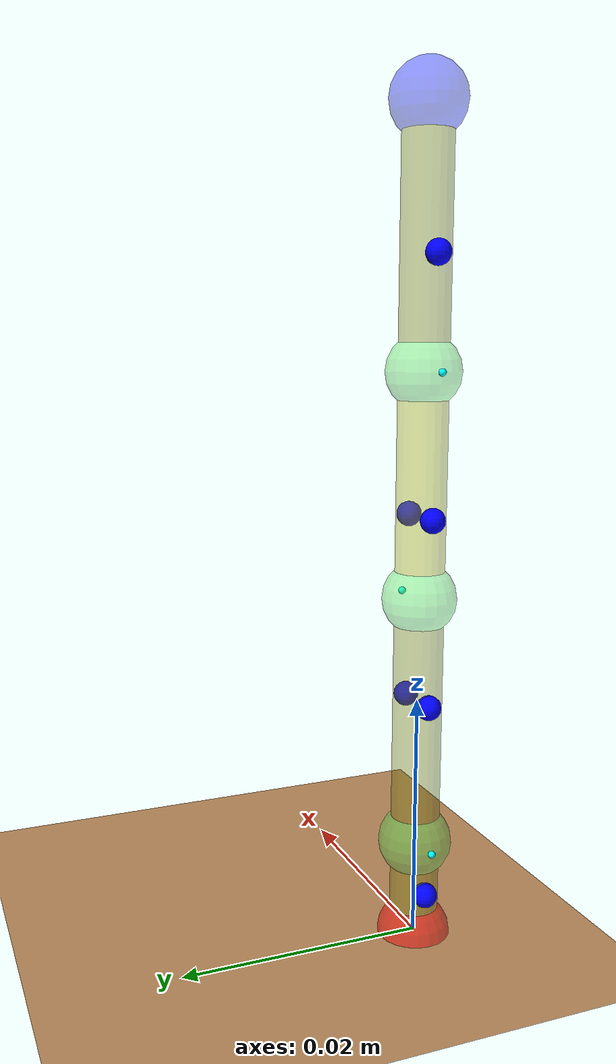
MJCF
<mujoco model="3SegRMdevel">
    <compiler coordinate="global" angle="radian"/>
    <option timestep="0.001" integrator="RK4" iterations="200"/>

    <default>
        <geom rgba=".8 .6 .4 0.5" solimp=".99 .99 0"/>
    </default>

    <asset>
        <texture type="skybox" builtin="gradient" rgb1="1 1 1" rgb2=".6 .8 1" width="256" height="256"/>
        <texture name="texplane" type="2d" builtin="checker" rgb1=".2 .3 .4" rgb2=".1 0.15 0.2"
            width="100" height="100"/>
        <material name='MatPlane' reflectance='0.5' texture="texplane" texrepeat="1 1" texuniform="true"/>
    </asset>

    <worldbody><!-- BODY 0 -->
        <light pos="0 1 1" dir="0 -1 -1" diffuse="1 1 1"/>
        <geom name='floor' pos='0 0 0' size='1 1 0.125' type='plane' material="MatPlane"/>
        <body name="m_tar" mocap="true">
            <geom type="sphere" size="0.003" rgba="1 0 0 .5"/>
        </body>
        <body name="s_tar"><!-- Tarsals --><!-- BODY 1 -->
            <geom name="geom_tar" type="capsule" fromto="0 0 0 0 0. 0.0080277" size="0.002" rgba="0.5 0.5 0 .4"/>
            <joint name="j_tmt" type="free" pos="0 0. 0" stiffness="0" damping="0" limited="false"/>
            <site name="t_ank_prx" pos="-0.002 0 0.004" size="0.001" rgba="0 0 1 1"/>
            <geom name="footSphere" type="sphere" pos="0 0 0" size="0.002" rgba=".3 .9 .3 .4"/>
            <body name="s_tib"><!-- Tibfib --><!-- BODY 2 -->
                <geom type="capsule" fromto="0 0. 0.0080277  0 0. 0.0284948" size="0.002" rgba="0.5 0.5 0 .4"/>
                <joint name="j_ank" type="hinge" axis="0 1 0" pos="0 0. 0.0080277" limited="true" range="-3.14 0"/>
                <site name="t_ank_dst" pos="-0.002 0 0.02" size="0.001" rgba="0 0 1 1"/>
                <site name="t_kne_prx" pos="0.002 0 0.02" size="0.001" rgba="0 0 1 1"/>
                <geom name="jointSphere_ank" type="sphere" pos="0 0 0.0080277" size="0.003" rgba=".3 .9 .3 .4"/>
                <site name="t_ank_via" pos="-0.003 0 0.0080277" size="0.0003" rgba="0 1 1 1"/>
                <body name="s_fem"><!-- Femur --><!-- BODY 3 -->
                    <geom type="capsule" fromto="0 0. 0.0284948  0 0. 0.046286" size="0.002" rgba="0.7 0.7 0 .4"/>
                    <joint name="j_kne" type="hinge" axis="0 1 0" pos="0 0. 0.0284948"/>
                    <site name="t_kne_dst" pos="0.002 0 0.035" size="0.001" rgba="0 0 1 1"/>
                    <site name="t_hip_prx" pos="-0.002 0 0.035" size="0.001" rgba="0 0 1 1"/>
                    <geom name="jointSphere_kne" type="sphere" pos="0 0. 0.0284948" size="0.003" rgba=".3 .9 .3 .4"/>
                    <site name="t_kne_via" pos="0.003 0 0.0284948" size="0.0003" rgba="0 1 1 1"/>
                    <body name="s_bod"><!-- Body --><!-- BODY 4 -->
                        <geom type="capsule" fromto="0 0. 0.046286  0 0. 0.0660299" size="0.002" rgba="0.5 0.5 0 .4"/>
                        <site name="t_hip_dst" pos="-0.002 0 0.055" size="0.001" rgba="0 0 1 1"/>
                        <geom name="jointSphere_hip" type="sphere" pos="0 0. 0.046286" size="0.003" rgba=".3 .9 .3 .4"/>
                        <site name="t_hip_via" pos="-0.003 0 0.0462868" size="0.0003" rgba="0 1 1 1"/>
                        <joint name="j_hip" type="hinge" axis="0 1 0" pos="0 0. 0.046286"/>
                        <geom name="snoutSphere" type="sphere" pos="0 0. 0.0660299" size="0.003" rgba="0 0 1 0.4"/>
                    </body>
                </body>
            </body>
        </body>
    </worldbody>
</mujoco>
